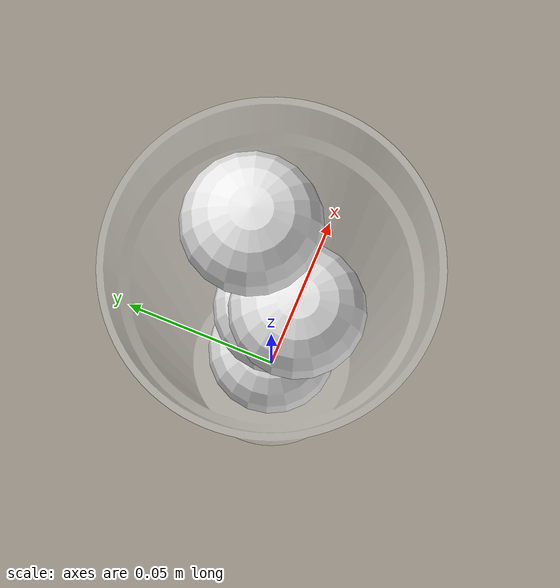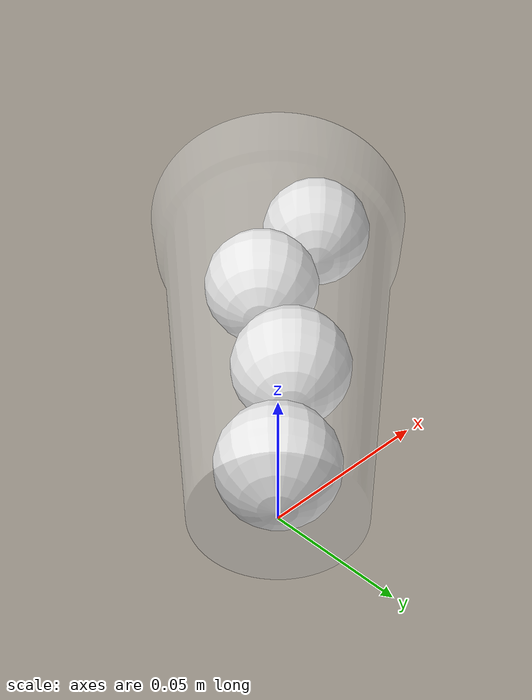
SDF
<?xml version="1.0" ?>
<sdf version="1.5">
  <model name="gobelet">
	<link name="link">
       <inertial>
          <pose>0 0 0.078 0 0 0</pose>
		  <mass>.03</mass>
		  <inertia>
			<ixx>0.000082165</ixx>
		  	<ixy>0</ixy>
		  	<ixz>0</ixz>
		  	<iyy>0.000082165</iyy>
		  	<iyz>0</iyz>
		  	<izz>0.00003787</izz>
		  </inertia>
        </inertial>
	<collision name="collision">
	  <geometry>
	    <mesh>
		<scale>0.001 0.001 0.001</scale>
		<uri>model://gobelet/meshes/gobelet.dae</uri>
	    </mesh>
	  </geometry>
	</collision>
	<visual name="visual">
 	  <transparency>.7</transparency>
	  <geometry>
	    <mesh>
		<scale>0.001 0.001 0.001</scale>
		<uri>model://gobelet/meshes/gobelet.dae</uri>
	    </mesh>
	  </geometry>
        <material>
          <script>
            <uri>file://media/materials/scripts/gazebo.material</uri>
            <name>Gazebo/White</name>
          </script>
        </material>
	</visual>
      </link>
	 <include>
		<name>pop1</name>
		<pose>0 0 .022 0 0 0</pose>
		<uri>model://popcorn</uri>
	    </include>
	    <include>
		<name>pop2</name>
		<pose>0.006 0 .063 0 0 0</pose>
		<uri>model://popcorn</uri>
	    </include>
	    <include>
		<name>pop3</name>
		<pose>0 -0.008 .104 0 0 0</pose>
		<uri>model://popcorn</uri>
	    </include>
	    <include>
		<name>pop4</name>
		<pose>0.01 0.01 .145 0 0 0</pose>
		<uri>model://popcorn</uri>
	    </include>
    </model>
 </sdf>

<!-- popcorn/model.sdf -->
<sdf version="1.5">
  <!--une balle de ping pong pèse 2,7 g pour un rayon de 20mm-->
  <model name="popcorn">
    <link name="link">
      <self_collide>1</self_collide>
      <inertial>
		<mass>.0027</mass>
	    <inertia>
			<!--2/3mr^2 pour une sphere creuse-->
            <ixx>0.00000072</ixx>
            <ixy>0</ixy>
            <ixz>0</ixz>
            <iyy>0.00000072</iyy>
            <iyz>0</iyz>
            <izz>0.00000072</izz>
          </inertia>
        </inertial>
	<collision name="collision">
        <geometry>
          <sphere>
            <radius>0.02</radius><!-- specification E2015_Rules_EU_EN_final.pdf3 -->
          </sphere>
        </geometry>
      </collision>
      <visual name="visual">
        <geometry>
          <sphere>
            <radius>0.02</radius>
          </sphere>
        </geometry>
        <material>
          <script>
	    <!-- balle de ping pong -->
            <uri>file://media/materials/scripts/gazebo.material</uri>
            <name>Gazebo/White</name>
          </script>
        </material>
      </visual>
    </link>
    </model>
 </sdf>
